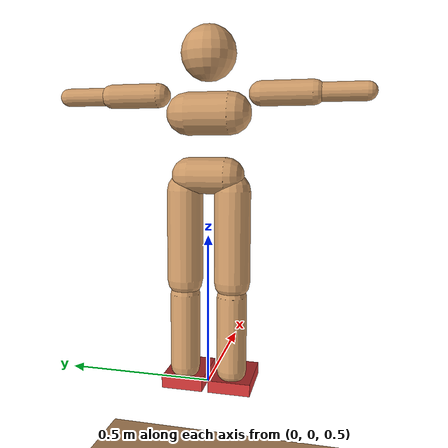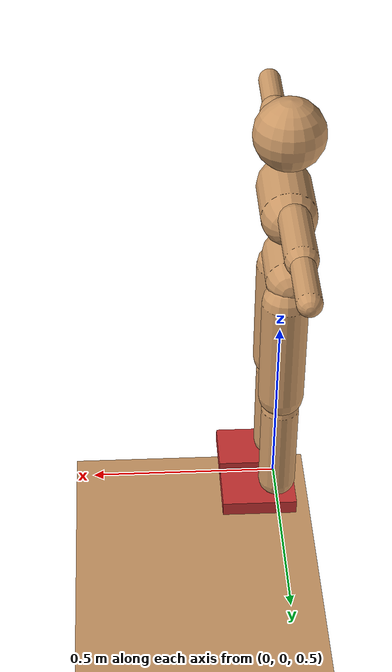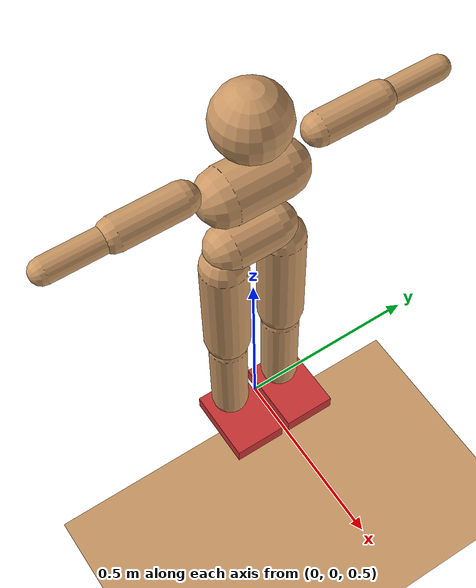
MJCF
<!--
Quark Humanoid v1: A Biomechanically-Inspired Model

This model is a simplified representation of the human body, designed for
learning locomotion and basic interaction in a MuJoCo simulation.
-->
<mujoco model="simple_balance">
  <compiler angle="degree" coordinate="local" inertiafromgeom="true"/>

  <option integrator="RK4" timestep="0.005"/>
  <size nconmax="2000" njmax="5000" />

  <default>
    <joint armature="1" damping="1" limited="true"/>
    <geom conaffinity="0" condim="3" density="1000" friction="1 0.5 0.5" margin="0.001" rgba="0.8 0.6 0.4 1"/>
  </default>

  <asset>
    <texture type="skybox" builtin="gradient" rgb1="0.4 0.6 0.8" rgb2="0 0 0" width="32" height="32"/>
    <texture name="texplane" type="2d" builtin="checker" rgb1=".2 .3 .4" rgb2=".1 0.15 0.2" width="512" height="512"/>
    <material name="MatPlane" reflectance="0.5" texture="texplane" texrepeat="1 1" texuniform="true"/>
  </asset>

  <worldbody>
    <!-- Camera for better viewing -->
    <camera name="track" mode="track" pos="0 -3 2"/>

    <!-- Arena Floor -->
    <geom name="floor" pos="0 0 0" size="5 5 0.1" type="plane" conaffinity="1" condim="3" material="MatPlane" friction="2 0.5 0.01"/>
    <light diffuse=".5 .5 .5" pos="0 0 5" dir="0 0 -1"/>

    <!-- Humanoid Root -->
    <body name="torso" pos="0 0 1.4">
      <joint type="free" limited="false"/>
      <geom name="torso_geom" type="capsule" fromto="0 -0.07 0 0 0.07 0" size="0.07" />
      <geom name="waist_geom" type="capsule" fromto="-0.01 -0.06 -0.2 -0.01 0.06 -0.2" size="0.06" />

      <!-- Head -->
      <body name="head" pos="0 0 0.19">
        <geom name="head_geom" type="sphere" size="0.09" />
        <joint name="neck_y" type="hinge" pos="0 0 0.04" axis="0 1 0" range="-45 45"/>
        <joint name="neck_x" type="hinge" pos="0 0 0.04" axis="1 0 0" range="-45 45"/>
      </body>

      <!-- Right Arm -->
      <body name="right_upper_arm" pos="0 -0.17 0.06">
        <joint name="right_shoulder_x" type="hinge" pos="0 0 0" axis="1 0 0" range="-85 60"/>
        <joint name="right_shoulder_y" type="hinge" pos="0 0 0" axis="0 1 0" range="-85 60"/>
        <geom name="ru_arm_geom" type="capsule" fromto="0 0 0 0 -0.16 0" size="0.04" />
        <body name="right_lower_arm" pos="0 -0.18 0">
          <joint name="right_elbow" type="hinge" pos="0 0.02 0" axis="0 1 0" range="-120 0"/>
          <geom name="rl_arm_geom" type="capsule" fromto="0 0 0 0 -0.14 0" size="0.03" />
        </body>
      </body>

      <!-- Left Arm -->
      <body name="left_upper_arm" pos="0 0.17 0.06">
        <joint name="left_shoulder_x" type="hinge" pos="0 0 0" axis="1 0 0" range="-60 85"/>
        <joint name="left_shoulder_y" type="hinge" pos="0 0 0" axis="0 1 0" range="-60 85"/>
        <geom name="lu_arm_geom" type="capsule" fromto="0 0 0 0 0.16 0" size="0.04" />
        <body name="left_lower_arm" pos="0 0.18 0">
          <joint name="left_elbow" type="hinge" pos="0 -0.02 0" axis="0 1 0" range="-120 0"/>
          <geom name="ll_arm_geom" type="capsule" fromto="0 0 0 0 0.14 0" size="0.03" />
        </body>
      </body>

      <!-- Right Leg -->
      <body name="right_thigh" pos="0 -0.08 -0.25">
        <joint name="right_hip_x" type="hinge" pos="0 0 0" axis="1 0 0" range="-80 20"/>
        <joint name="right_hip_y" type="hinge" pos="0 0 0" axis="0 1 0" range="-45 45"/>
        <geom name="r_thigh_geom" type="capsule" fromto="0 0 0 0 0 -0.3" size="0.06" />
        <body name="right_shin" pos="0 0 -0.35">
          <joint name="right_knee" type="hinge" pos="0 0 0.02" axis="0 -1 0" range="0 150"/>
          <geom name="r_shin_geom" type="capsule" fromto="0 0 0 0 0 -0.25" size="0.05" />
          <!-- Right Foot -->
          <body name="right_foot" pos="0 0 -0.275">
            <joint name="right_ankle_y" type="hinge" pos="0 0 0.025" axis="0 1 0" range="-45 45"/>
            <joint name="right_ankle_x" type="hinge" pos="0 0 0.025" axis="1 0 0" range="-30 30"/>
            <geom name="r_foot_geom" type="box" pos="0.05 0 -0.025" size="0.1 0.07 0.02" rgba="0.8 0.2 0.2 1" friction="5 2 0.01"/>
          </body>
        </body>
      </body>

      <!-- Left Leg -->
      <body name="left_thigh" pos="0 0.08 -0.25">
        <joint name="left_hip_x" type="hinge" pos="0 0 0" axis="1 0 0" range="-80 20"/>
        <joint name="left_hip_y" type="hinge" pos="0 0 0" axis="0 1 0" range="-45 45"/>
        <geom name="l_thigh_geom" type="capsule" fromto="0 0 0 0 0 -0.3" size="0.06" />
        <body name="left_shin" pos="0 0 -0.35">
          <joint name="left_knee" type="hinge" pos="0 0 0.02" axis="0 -1 0" range="0 150"/>
          <geom name="l_shin_geom" type="capsule" fromto="0 0 0 0 0 -0.25" size="0.05" />
          <!-- Left Foot -->
          <body name="left_foot" pos="0 0 -0.275">
            <joint name="left_ankle_y" type="hinge" pos="0 0 0.025" axis="0 1 0" range="-45 45"/>
            <joint name="left_ankle_x" type="hinge" pos="0 0 0.025" axis="1 0 0" range="-30 30"/>
            <geom name="l_foot_geom" type="box" pos="0.05 0 -0.025" size="0.1 0.07 0.02" rgba="0.8 0.2 0.2 1" friction="5 2 0.01"/>
          </body>
        </body>
      </body>

    </body>
  </worldbody>

  <actuator>
    <!-- Head control -->
    <motor ctrllimited="true" ctrlrange="-1.0 1.0" gear="50" joint="neck_y" name="neck_y_motor"/>
    <motor ctrllimited="true" ctrlrange="-1.0 1.0" gear="50" joint="neck_x" name="neck_x_motor"/>

    <!-- Right arm control -->
    <motor ctrllimited="true" ctrlrange="-1.0 1.0" gear="50" joint="right_shoulder_x" name="right_shoulder_x_motor"/>
    <motor ctrllimited="true" ctrlrange="-1.0 1.0" gear="50" joint="right_shoulder_y" name="right_shoulder_y_motor"/>
    <motor ctrllimited="true" ctrlrange="-1.0 1.0" gear="50" joint="right_elbow" name="right_elbow_motor"/>

    <!-- Left arm control -->
    <motor ctrllimited="true" ctrlrange="-1.0 1.0" gear="50" joint="left_shoulder_x" name="left_shoulder_x_motor"/>
    <motor ctrllimited="true" ctrlrange="-1.0 1.0" gear="50" joint="left_shoulder_y" name="left_shoulder_y_motor"/>
    <motor ctrllimited="true" ctrlrange="-1.0 1.0" gear="50" joint="left_elbow" name="left_elbow_motor"/>

    <!-- Right leg control -->
    <motor ctrllimited="true" ctrlrange="-1.0 1.0" gear="50" joint="right_hip_x" name="right_hip_x_motor"/>
    <motor ctrllimited="true" ctrlrange="-1.0 1.0" gear="50" joint="right_hip_y" name="right_hip_y_motor"/>
    <motor ctrllimited="true" ctrlrange="-1.0 1.0" gear="50" joint="right_knee" name="right_knee_motor"/>
    <motor ctrllimited="true" ctrlrange="-1.0 1.0" gear="50" joint="right_ankle_y" name="right_ankle_y_motor"/>
    <motor ctrllimited="true" ctrlrange="-1.0 1.0" gear="50" joint="right_ankle_x" name="right_ankle_x_motor"/>

    <!-- Left leg control -->
    <motor ctrllimited="true" ctrlrange="-1.0 1.0" gear="50" joint="left_hip_x" name="left_hip_x_motor"/>
    <motor ctrllimited="true" ctrlrange="-1.0 1.0" gear="50" joint="left_hip_y" name="left_hip_y_motor"/>
    <motor ctrllimited="true" ctrlrange="-1.0 1.0" gear="50" joint="left_knee" name="left_knee_motor"/>
    <motor ctrllimited="true" ctrlrange="-1.0 1.0" gear="50" joint="left_ankle_y" name="left_ankle_y_motor"/>
    <motor ctrllimited="true" ctrlrange="-1.0 1.0" gear="50" joint="left_ankle_x" name="left_ankle_x_motor"/>
  </actuator>
</mujoco>
